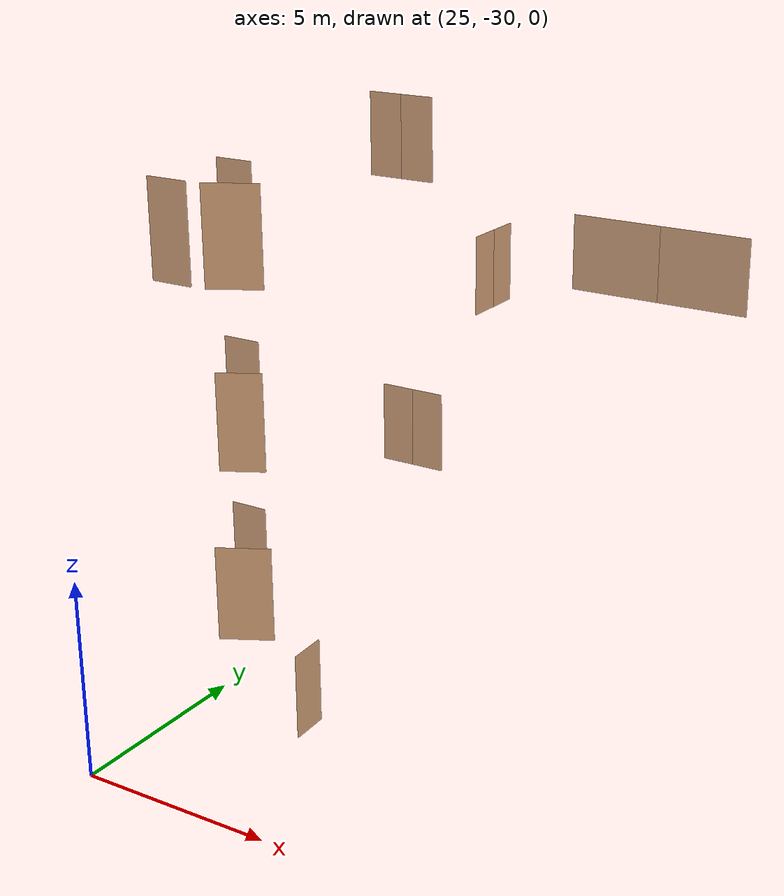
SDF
<sdf version="1.7">
 <world name="sim_world">
  <model name="Snull13">
   <pose>28.110629877160868 -25.59315610648544 0.0 0 0 -1.5295418897094035</pose>
   <link name="right">
    <pose>0 0 1.11 0 0 0</pose>
    <visual name="right_visual">
     <geometry><box><size>1.0111802562463839 0.03 2.2</size></box></geometry>
     <material>
      <ambient>0.5 0.25 0 0.6</ambient>
      <diffuse>0.5 0.25 0 0.6</diffuse>
      <pbr><metal><metalness>0.0</metalness></metal></pbr>
     </material>
    </visual>
    <collision name="right_collision">
     <geometry><box><size>1.0111802562463839 0.03 2.2</size></box></geometry>
     <surface><contact><collide_bitmask>0x02</collide_bitmask></contact></surface>
    </collision>
    <inertial>
     <mass>50.0</mass>
     <inertia><ixx>20.17041666666667</ixx><iyy>24.4270229609271</iyy><izz>4.2641062942604275</izz></inertia>
    </inertial>
   </link>
   <joint name="right_joint" type="revolute">
    <parent>world</parent>
    <child>right</child>
    <axis><xyz>0 0 -1</xyz><limit><lower>0</lower><upper>1.57</upper></limit></axis>
    <pose>0.5105901281231919 0 0 0 0 0</pose>
   </joint>
   <plugin name="register_component" filename="libregister_component.so">
    <component name="Door">
     <v_max_door>0.5</v_max_door>
     <a_max_door>0.3</a_max_door>
     <a_nom_door>0.15</a_nom_door>
     <dx_min_door>0.01</dx_min_door>
     <f_max_door>500.0</f_max_door>
     <ros_interface>true</ros_interface>
     <door name="Snull13" type="SwingDoor" left_joint_name="empty_joint" right_joint_name="right_joint"/>
    </component>
   </plugin>
  </model>
  <model name="0null21">
   <pose>26.287103759847646 -17.968599484747777 4.0 0 0 0.0</pose>
   <link name="right">
    <pose>0.466013889407459 0 1.11 0 0 0</pose>
    <visual name="right_visual">
     <geometry><box><size>0.922027778814918 0.03 2.2</size></box></geometry>
     <material>
      <ambient>0.5 0.25 0 0.6</ambient>
      <diffuse>0.5 0.25 0 0.6</diffuse>
      <pbr><metal><metalness>0.0</metalness></metal></pbr>
     </material>
    </visual>
    <collision name="right_collision">
     <geometry><box><size>0.922027778814918 0.03 2.2</size></box></geometry>
     <surface><contact><collide_bitmask>0x02</collide_bitmask></contact></surface>
    </collision>
    <inertial>
     <mass>50.0</mass>
     <inertia><ixx>20.17041666666667</ixx><iyy>23.70889677044322</iyy><izz>3.545980103776548</izz></inertia>
    </inertial>
   </link>
   <joint name="right_joint" type="revolute">
    <parent>world</parent>
    <child>right</child>
    <axis><xyz>0 0 -1</xyz><limit><lower>0</lower><upper>1.57</upper></limit></axis>
    <pose>0.466013889407459 0 0 0 0 0</pose>
   </joint>
   <link name="left">
    <pose>-0.466013889407459 0 1.11 0 0 0</pose>
    <visual name="left_visual">
     <geometry><box><size>0.922027778814918 0.03 2.2</size></box></geometry>
     <material>
      <ambient>0.5 0.25 0 0.6</ambient>
      <diffuse>0.5 0.25 0 0.6</diffuse>
      <pbr><metal><metalness>0.0</metalness></metal></pbr>
     </material>
    </visual>
    <collision name="left_collision">
     <geometry><box><size>0.922027778814918 0.03 2.2</size></box></geometry>
     <surface><contact><collide_bitmask>0x02</collide_bitmask></contact></surface>
    </collision>
    <inertial>
     <mass>50.0</mass>
     <inertia><ixx>20.17041666666667</ixx><iyy>23.70889677044322</iyy><izz>3.545980103776548</izz></inertia>
    </inertial>
   </link>
   <joint name="left_joint" type="revolute">
    <parent>world</parent>
    <child>left</child>
    <axis><xyz>0 0 -1</xyz><limit><lower>-1.57</lower><upper>0</upper></limit></axis>
    <pose>-0.466013889407459 0 0 0 0 0</pose>
   </joint>
   <plugin name="register_component" filename="libregister_component.so">
    <component name="Door">
     <v_max_door>0.5</v_max_door>
     <a_max_door>0.3</a_max_door>
     <a_nom_door>0.15</a_nom_door>
     <dx_min_door>0.01</dx_min_door>
     <f_max_door>500.0</f_max_door>
     <ros_interface>true</ros_interface>
     <door name="0null21" type="DoubleSwingDoor" left_joint_name="left_joint" right_joint_name="right_joint"/>
    </component>
   </plugin>
  </model>
  <model name="0null25">
   <pose>27.425120412201753 -26.721129074412858 4.0 0 0 0.0</pose>
   <link name="right">
    <pose>0 0 1.11 0 0 0</pose>
    <visual name="right_visual">
     <geometry><box><size>0.9119280887129884 0.03 2.2</size></box></geometry>
     <material>
      <ambient>0.5 0.25 0 0.6</ambient>
      <diffuse>0.5 0.25 0 0.6</diffuse>
      <pbr><metal><metalness>0.0</metalness></metal></pbr>
     </material>
    </visual>
    <collision name="right_collision">
     <geometry><box><size>0.9119280887129884 0.03 2.2</size></box></geometry>
     <surface><contact><collide_bitmask>0x02</collide_bitmask></contact></surface>
    </collision>
    <inertial>
     <mass>50.0</mass>
     <inertia><ixx>20.17041666666667</ixx><iyy>23.631720162432188</iyy><izz>3.468803495765517</izz></inertia>
    </inertial>
   </link>
   <joint name="right_joint" type="revolute">
    <parent>world</parent>
    <child>right</child>
    <axis><xyz>0 0 -1</xyz><limit><lower>0</lower><upper>1.57</upper></limit></axis>
    <pose>0.4609640443564942 0 0 0 0 0</pose>
   </joint>
   <plugin name="register_component" filename="libregister_component.so">
    <component name="Door">
     <v_max_door>0.5</v_max_door>
     <a_max_door>0.3</a_max_door>
     <a_nom_door>0.15</a_nom_door>
     <dx_min_door>0.01</dx_min_door>
     <f_max_door>500.0</f_max_door>
     <ros_interface>true</ros_interface>
     <door name="0null25" type="SwingDoor" left_joint_name="empty_joint" right_joint_name="right_joint"/>
    </component>
   </plugin>
  </model>
  <model name="nullb1">
   <pose>28.75736474629427 -28.66306985774557 4.0 0 0 0.4795310712493235</pose>
   <link name="right">
    <pose>0 0 1.11 0 0 0</pose>
    <visual name="right_visual">
     <geometry><box><size>1.2273863627023087 0.03 2.2</size></box></geometry>
     <material>
      <ambient>0.5 0.25 0 0.6</ambient>
      <diffuse>0.5 0.25 0 0.6</diffuse>
      <pbr><metal><metalness>0.0</metalness></metal></pbr>
     </material>
    </visual>
    <collision name="right_collision">
     <geometry><box><size>1.2273863627023087 0.03 2.2</size></box></geometry>
     <surface><contact><collide_bitmask>0x02</collide_bitmask></contact></surface>
    </collision>
    <inertial>
     <mass>50.0</mass>
     <inertia><ixx>20.17041666666667</ixx><iyy>26.443655347281688</iyy><izz>6.280738680615014</izz></inertia>
    </inertial>
   </link>
   <joint name="right_joint" type="revolute">
    <parent>world</parent>
    <child>right</child>
    <axis><xyz>0 0 -1</xyz><limit><lower>0</lower><upper>1.57</upper></limit></axis>
    <pose>0.6186931813511544 0 0 0 0 0</pose>
   </joint>
   <plugin name="register_component" filename="libregister_component.so">
    <component name="Door">
     <v_max_door>0.5</v_max_door>
     <a_max_door>0.3</a_max_door>
     <a_nom_door>0.15</a_nom_door>
     <dx_min_door>0.01</dx_min_door>
     <f_max_door>500.0</f_max_door>
     <ros_interface>true</ros_interface>
     <door name="nullb1" type="SwingDoor" left_joint_name="empty_joint" right_joint_name="right_joint"/>
    </component>
   </plugin>
  </model>
  <model name="1null25">
   <pose>27.425120412201753 -26.721129074412858 8.0 0 0 0.0</pose>
   <link name="right">
    <pose>0 0 1.11 0 0 0</pose>
    <visual name="right_visual">
     <geometry><box><size>0.9119280887129884 0.03 2.2</size></box></geometry>
     <material>
      <ambient>0.5 0.25 0 0.6</ambient>
      <diffuse>0.5 0.25 0 0.6</diffuse>
      <pbr><metal><metalness>0.0</metalness></metal></pbr>
     </material>
    </visual>
    <collision name="right_collision">
     <geometry><box><size>0.9119280887129884 0.03 2.2</size></box></geometry>
     <surface><contact><collide_bitmask>0x02</collide_bitmask></contact></surface>
    </collision>
    <inertial>
     <mass>50.0</mass>
     <inertia><ixx>20.17041666666667</ixx><iyy>23.631720162432188</iyy><izz>3.468803495765517</izz></inertia>
    </inertial>
   </link>
   <joint name="right_joint" type="revolute">
    <parent>world</parent>
    <child>right</child>
    <axis><xyz>0 0 -1</xyz><limit><lower>0</lower><upper>1.57</upper></limit></axis>
    <pose>0.4609640443564942 0 0 0 0 0</pose>
   </joint>
   <plugin name="register_component" filename="libregister_component.so">
    <component name="Door">
     <v_max_door>0.5</v_max_door>
     <a_max_door>0.3</a_max_door>
     <a_nom_door>0.15</a_nom_door>
     <dx_min_door>0.01</dx_min_door>
     <f_max_door>500.0</f_max_door>
     <ros_interface>true</ros_interface>
     <door name="1null25" type="SwingDoor" left_joint_name="empty_joint" right_joint_name="right_joint"/>
    </component>
   </plugin>
  </model>
  <model name="1null76">
   <pose>30.970223649329782 -12.445039764029413 8.0 0 0 3.1330323464274543</pose>
   <link name="right">
    <pose>1.346677799555242 0 1.11 0 0 0</pose>
    <visual name="right_visual">
     <geometry><box><size>2.683355599110484 0.03 2.2</size></box></geometry>
     <material>
      <ambient>0.5 0.25 0 0.6</ambient>
      <diffuse>0.5 0.25 0 0.6</diffuse>
      <pbr><metal><metalness>0.0</metalness></metal></pbr>
     </material>
    </visual>
    <collision name="right_collision">
     <geometry><box><size>2.683355599110484 0.03 2.2</size></box></geometry>
     <surface><contact><collide_bitmask>0x02</collide_bitmask></contact></surface>
    </collision>
    <inertial>
     <mass>50.0</mass>
     <inertia><ixx>20.17041666666667</ixx><iyy>50.16832196365661</iyy><izz>30.005405296989938</izz></inertia>
    </inertial>
   </link>
   <joint name="right_joint" type="prismatic">
    <parent>world</parent>
    <child>right</child>
    <axis>
     <xyz>1 0 0</xyz>
     <limit><lower>0.0</lower><upper>2.693355599110484</upper><effort>500.0</effort></limit>
    </axis>
   </joint>
   <link name="left">
    <pose>-1.346677799555242 0 1.11 0 0 0</pose>
    <visual name="left_visual">
     <geometry><box><size>2.683355599110484 0.03 2.2</size></box></geometry>
     <material>
      <ambient>0.5 0.25 0 0.6</ambient>
      <diffuse>0.5 0.25 0 0.6</diffuse>
      <pbr><metal><metalness>0.0</metalness></metal></pbr>
     </material>
    </visual>
    <collision name="left_collision">
     <geometry><box><size>2.683355599110484 0.03 2.2</size></box></geometry>
     <surface><contact><collide_bitmask>0x02</collide_bitmask></contact></surface>
    </collision>
    <inertial>
     <mass>50.0</mass>
     <inertia><ixx>20.17041666666667</ixx><iyy>50.16832196365661</iyy><izz>30.005405296989938</izz></inertia>
    </inertial>
   </link>
   <joint name="left_joint" type="prismatic">
    <parent>world</parent>
    <child>left</child>
    <axis>
     <xyz>1 0 0</xyz>
     <limit><lower>-2.693355599110484</lower><upper>0.0</upper><effort>500.0</effort></limit>
    </axis>
   </joint>
   <plugin name="register_component" filename="libregister_component.so">
    <component name="Door">
     <v_max_door>0.2</v_max_door>
     <a_max_door>0.2</a_max_door>
     <a_nom_door>0.08</a_nom_door>
     <dx_min_door>0.001</dx_min_door>
     <f_max_door>100.0</f_max_door>
     <ros_interface>true</ros_interface>
     <door name="1null76" type="DoubleSlidingDoor" left_joint_name="left_joint" right_joint_name="right_joint"/>
    </component>
   </plugin>
  </model>
  <model name="1null85">
   <pose>27.22805510958442 -15.22516148303027 8.0 0 0 -1.5707963267948966</pose>
   <link name="right">
    <pose>0.4684221334428549 0 1.11 0 0 0</pose>
    <visual name="right_visual">
     <geometry><box><size>0.9268442668857098 0.03 2.2</size></box></geometry>
     <material>
      <ambient>0.5 0.25 0 0.6</ambient>
      <diffuse>0.5 0.25 0 0.6</diffuse>
      <pbr><metal><metalness>0.0</metalness></metal></pbr>
     </material>
    </visual>
    <collision name="right_collision">
     <geometry><box><size>0.9268442668857098 0.03 2.2</size></box></geometry>
     <surface><contact><collide_bitmask>0x02</collide_bitmask></contact></surface>
    </collision>
    <inertial>
     <mass>50.0</mass>
     <inertia><ixx>20.17041666666667</ixx><iyy>23.746001229412126</iyy><izz>3.5830845627454537</izz></inertia>
    </inertial>
   </link>
   <joint name="right_joint" type="revolute">
    <parent>world</parent>
    <child>right</child>
    <axis><xyz>0 0 -1</xyz><limit><lower>0</lower><upper>1.57</upper></limit></axis>
    <pose>0.4684221334428549 0 0 0 0 0</pose>
   </joint>
   <link name="left">
    <pose>-0.4684221334428549 0 1.11 0 0 0</pose>
    <visual name="left_visual">
     <geometry><box><size>0.9268442668857098 0.03 2.2</size></box></geometry>
     <material>
      <ambient>0.5 0.25 0 0.6</ambient>
      <diffuse>0.5 0.25 0 0.6</diffuse>
      <pbr><metal><metalness>0.0</metalness></metal></pbr>
     </material>
    </visual>
    <collision name="left_collision">
     <geometry><box><size>0.9268442668857098 0.03 2.2</size></box></geometry>
     <surface><contact><collide_bitmask>0x02</collide_bitmask></contact></surface>
    </collision>
    <inertial>
     <mass>50.0</mass>
     <inertia><ixx>20.17041666666667</ixx><iyy>23.746001229412126</iyy><izz>3.5830845627454537</izz></inertia>
    </inertial>
   </link>
   <joint name="left_joint" type="revolute">
    <parent>world</parent>
    <child>left</child>
    <axis><xyz>0 0 -1</xyz><limit><lower>-1.57</lower><upper>0</upper></limit></axis>
    <pose>-0.4684221334428549 0 0 0 0 0</pose>
   </joint>
   <plugin name="register_component" filename="libregister_component.so">
    <component name="Door">
     <v_max_door>0.5</v_max_door>
     <a_max_door>0.3</a_max_door>
     <a_nom_door>0.15</a_nom_door>
     <dx_min_door>0.01</dx_min_door>
     <f_max_door>500.0</f_max_door>
     <ros_interface>true</ros_interface>
     <door name="1null85" type="DoubleSwingDoor" left_joint_name="left_joint" right_joint_name="right_joint"/>
    </component>
   </plugin>
  </model>
  <model name="nullb3">
   <pose>28.82783855430682 -28.627487585408637 8.0 0 0 0.4724807734734819</pose>
   <link name="right">
    <pose>0 0 1.11 0 0 0</pose>
    <visual name="right_visual">
     <geometry><box><size>0.9956728817609504 0.03 2.2</size></box></geometry>
     <material>
      <ambient>0.5 0.25 0 0.6</ambient>
      <diffuse>0.5 0.25 0 0.6</diffuse>
      <pbr><metal><metalness>0.0</metalness></metal></pbr>
     </material>
    </visual>
    <collision name="right_collision">
     <geometry><box><size>0.9956728817609504 0.03 2.2</size></box></geometry>
     <surface><contact><collide_bitmask>0x02</collide_bitmask></contact></surface>
    </collision>
    <inertial>
     <mass>50.0</mass>
     <inertia><ixx>20.17041666666667</ixx><iyy>24.297352031142317</iyy><izz>4.134435364475648</izz></inertia>
    </inertial>
   </link>
   <joint name="right_joint" type="revolute">
    <parent>world</parent>
    <child>right</child>
    <axis><xyz>0 0 -1</xyz><limit><lower>0</lower><upper>1.57</upper></limit></axis>
    <pose>0.5028364408804752 0 0 0 0 0</pose>
   </joint>
   <plugin name="register_component" filename="libregister_component.so">
    <component name="Door">
     <v_max_door>0.5</v_max_door>
     <a_max_door>0.3</a_max_door>
     <a_nom_door>0.15</a_nom_door>
     <dx_min_door>0.01</dx_min_door>
     <f_max_door>500.0</f_max_door>
     <ros_interface>true</ros_interface>
     <door name="nullb3" type="SwingDoor" left_joint_name="empty_joint" right_joint_name="right_joint"/>
    </component>
   </plugin>
  </model>
  <model name="2null21">
   <pose>26.004480454019323 -17.971362431393036 12.0 0 0 0.0</pose>
   <link name="right">
    <pose>0.47388268677892587 0 1.11 0 0 0</pose>
    <visual name="right_visual">
     <geometry><box><size>0.9377653735578517 0.03 2.2</size></box></geometry>
     <material>
      <ambient>0.5 0.25 0 0.6</ambient>
      <diffuse>0.5 0.25 0 0.6</diffuse>
      <pbr><metal><metalness>0.0</metalness></metal></pbr>
     </material>
    </visual>
    <collision name="right_collision">
     <geometry><box><size>0.9377653735578517 0.03 2.2</size></box></geometry>
     <surface><contact><collide_bitmask>0x02</collide_bitmask></contact></surface>
    </collision>
    <inertial>
     <mass>50.0</mass>
     <inertia><ixx>20.17041666666667</ixx><iyy>23.83084956601708</iyy><izz>3.6679328993504052</izz></inertia>
    </inertial>
   </link>
   <joint name="right_joint" type="revolute">
    <parent>world</parent>
    <child>right</child>
    <axis><xyz>0 0 -1</xyz><limit><lower>0</lower><upper>1.57</upper></limit></axis>
    <pose>0.47388268677892587 0 0 0 0 0</pose>
   </joint>
   <link name="left">
    <pose>-0.47388268677892587 0 1.11 0 0 0</pose>
    <visual name="left_visual">
     <geometry><box><size>0.9377653735578517 0.03 2.2</size></box></geometry>
     <material>
      <ambient>0.5 0.25 0 0.6</ambient>
      <diffuse>0.5 0.25 0 0.6</diffuse>
      <pbr><metal><metalness>0.0</metalness></metal></pbr>
     </material>
    </visual>
    <collision name="left_collision">
     <geometry><box><size>0.9377653735578517 0.03 2.2</size></box></geometry>
     <surface><contact><collide_bitmask>0x02</collide_bitmask></contact></surface>
    </collision>
    <inertial>
     <mass>50.0</mass>
     <inertia><ixx>20.17041666666667</ixx><iyy>23.83084956601708</iyy><izz>3.6679328993504052</izz></inertia>
    </inertial>
   </link>
   <joint name="left_joint" type="revolute">
    <parent>world</parent>
    <child>left</child>
    <axis><xyz>0 0 -1</xyz><limit><lower>-1.57</lower><upper>0</upper></limit></axis>
    <pose>-0.47388268677892587 0 0 0 0 0</pose>
   </joint>
   <plugin name="register_component" filename="libregister_component.so">
    <component name="Door">
     <v_max_door>0.5</v_max_door>
     <a_max_door>0.3</a_max_door>
     <a_nom_door>0.15</a_nom_door>
     <dx_min_door>0.01</dx_min_door>
     <f_max_door>500.0</f_max_door>
     <ros_interface>true</ros_interface>
     <door name="2null21" type="DoubleSwingDoor" left_joint_name="left_joint" right_joint_name="right_joint"/>
    </component>
   </plugin>
  </model>
  <model name="2null25">
   <pose>27.425120412201753 -26.721129074412858 12.0 0 0 0.0</pose>
   <link name="right">
    <pose>0 0 1.11 0 0 0</pose>
    <visual name="right_visual">
     <geometry><box><size>0.9119280887129884 0.03 2.2</size></box></geometry>
     <material>
      <ambient>0.5 0.25 0 0.6</ambient>
      <diffuse>0.5 0.25 0 0.6</diffuse>
      <pbr><metal><metalness>0.0</metalness></metal></pbr>
     </material>
    </visual>
    <collision name="right_collision">
     <geometry><box><size>0.9119280887129884 0.03 2.2</size></box></geometry>
     <surface><contact><collide_bitmask>0x02</collide_bitmask></contact></surface>
    </collision>
    <inertial>
     <mass>50.0</mass>
     <inertia><ixx>20.17041666666667</ixx><iyy>23.631720162432188</iyy><izz>3.468803495765517</izz></inertia>
    </inertial>
   </link>
   <joint name="right_joint" type="revolute">
    <parent>world</parent>
    <child>right</child>
    <axis><xyz>0 0 -1</xyz><limit><lower>0</lower><upper>1.57</upper></limit></axis>
    <pose>0.4609640443564942 0 0 0 0 0</pose>
   </joint>
   <plugin name="register_component" filename="libregister_component.so">
    <component name="Door">
     <v_max_door>0.5</v_max_door>
     <a_max_door>0.3</a_max_door>
     <a_nom_door>0.15</a_nom_door>
     <dx_min_door>0.01</dx_min_door>
     <f_max_door>500.0</f_max_door>
     <ros_interface>true</ros_interface>
     <door name="2null25" type="SwingDoor" left_joint_name="empty_joint" right_joint_name="right_joint"/>
    </component>
   </plugin>
  </model>
  <model name="2null26">
   <pose>27.4428928798118 -28.9351080909532 12.0 0 0 0.0</pose>
   <link name="right">
    <pose>0 0 1.11 0 0 0</pose>
    <visual name="right_visual">
     <geometry><box><size>1.0012384721651786 0.03 2.2</size></box></geometry>
     <material>
      <ambient>0.5 0.25 0 0.6</ambient>
      <diffuse>0.5 0.25 0 0.6</diffuse>
      <pbr><metal><metalness>0.0</metalness></metal></pbr>
     </material>
    </visual>
    <collision name="right_collision">
     <geometry><box><size>1.0012384721651786 0.03 2.2</size></box></geometry>
     <surface><contact><collide_bitmask>0x02</collide_bitmask></contact></surface>
    </collision>
    <inertial>
     <mass>50.0</mass>
     <inertia><ixx>20.17041666666667</ixx><iyy>24.34366032559859</iyy><izz>4.180743658931921</izz></inertia>
    </inertial>
   </link>
   <joint name="right_joint" type="revolute">
    <parent>world</parent>
    <child>right</child>
    <axis><xyz>0 0 1</xyz><limit><lower>0</lower><upper>1.57</upper></limit></axis>
    <pose>0.5056192360825893 0 0 0 0 0</pose>
   </joint>
   <plugin name="register_component" filename="libregister_component.so">
    <component name="Door">
     <v_max_door>0.5</v_max_door>
     <a_max_door>0.3</a_max_door>
     <a_nom_door>0.15</a_nom_door>
     <dx_min_door>0.01</dx_min_door>
     <f_max_door>500.0</f_max_door>
     <ros_interface>true</ros_interface>
     <door name="2null26" type="SwingDoor" left_joint_name="empty_joint" right_joint_name="right_joint"/>
    </component>
   </plugin>
  </model>
  <model name="nullb4">
   <pose>28.81902699473545 -28.614475600194133 12.0 0 0 0.4921820266745037</pose>
   <link name="right">
    <pose>0 0 1.11 0 0 0</pose>
    <visual name="right_visual">
     <geometry><box><size>1.2131845446353848 0.03 2.2</size></box></geometry>
     <material>
      <ambient>0.5 0.25 0 0.6</ambient>
      <diffuse>0.5 0.25 0 0.6</diffuse>
      <pbr><metal><metalness>0.0</metalness></metal></pbr>
     </material>
    </visual>
    <collision name="right_collision">
     <geometry><box><size>1.2131845446353848 0.03 2.2</size></box></geometry>
     <surface><contact><collide_bitmask>0x02</collide_bitmask></contact></surface>
    </collision>
    <inertial>
     <mass>50.0</mass>
     <inertia><ixx>20.17041666666667</ixx><iyy>26.299236413925694</iyy><izz>6.136319747259025</izz></inertia>
    </inertial>
   </link>
   <joint name="right_joint" type="revolute">
    <parent>world</parent>
    <child>right</child>
    <axis><xyz>0 0 -1</xyz><limit><lower>0</lower><upper>1.57</upper></limit></axis>
    <pose>0.6115922723176924 0 0 0 0 0</pose>
   </joint>
   <plugin name="register_component" filename="libregister_component.so">
    <component name="Door">
     <v_max_door>0.5</v_max_door>
     <a_max_door>0.3</a_max_door>
     <a_nom_door>0.15</a_nom_door>
     <dx_min_door>0.01</dx_min_door>
     <f_max_door>500.0</f_max_door>
     <ros_interface>true</ros_interface>
     <door name="nullb4" type="SwingDoor" left_joint_name="empty_joint" right_joint_name="right_joint"/>
    </component>
   </plugin>
  </model>
 </world>
</sdf>
